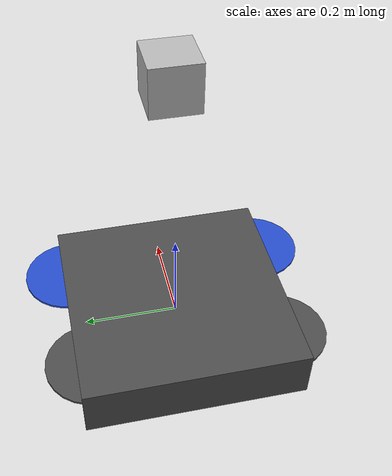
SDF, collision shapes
<sdf version='1.5'>
  <model name='iris'>
    <link name='base_link'>
      <pose>0 0 0 0 -0 0</pose>
      <inertial>
        <pose>0 0 0 0 -0 0</pose>
        <mass>1.5</mass>
        <inertia>
          <ixx>0.0347563</ixx>
          <ixy>0</ixy>
          <ixz>0</ixz>
          <iyy>0.0458929</iyy>
          <iyz>0</iyz>
          <izz>0.0977</izz>
        </inertia>
      </inertial>
      <collision name='base_link_collision'>
        <pose>0 0 0 0 -0 0</pose>
        <geometry>
          <box>
            <size>0.47 0.47 0.11</size>
          </box>
        </geometry>
        <surface>
          <contact>
            <ode/>
          </contact>
          <friction>
            <ode/>
          </friction>
        </surface>
      </collision>
      <visual name='base_link_visual'>
        <pose>0 0 0 0 -0 0</pose>
        <geometry>
          <mesh>
            <scale>1 1 1</scale>
            <uri>model://rotors_description/meshes/iris.dae</uri>
          </mesh>
        </geometry>
        <material>
          <script>
            <name>Gazebo/DarkGrey</name>
            <uri>__default__</uri>
          </script>
        </material>
      </visual>
      <gravity>1</gravity>
      <velocity_decay/>
      <self_collide>0</self_collide>
    </link>
    <link name='iris/imu_link'>
      <pose>0 0 0 0 -0 0</pose>
      <inertial>
        <pose>0 0 0 0 -0 0</pose>
        <mass>0.015</mass>
        <inertia>
          <ixx>1e-05</ixx>
          <ixy>0</ixy>
          <ixz>0</ixz>
          <iyy>1e-05</iyy>
          <iyz>0</iyz>
          <izz>1e-05</izz>
        </inertia>
      </inertial>
    </link>
    <joint name='iris/imu_joint' type='revolute'>
      <child>iris/imu_link</child>
      <parent>base_link</parent>
      <axis>
        <xyz>1 0 0</xyz>
        <limit>
          <lower>0</lower>
          <upper>0</upper>
          <effort>0</effort>
          <velocity>0</velocity>
        </limit>
        <dynamics>
          <spring_reference>0</spring_reference>
          <spring_stiffness>0</spring_stiffness>
        </dynamics>
        <use_parent_model_frame>1</use_parent_model_frame>
      </axis>
    </joint>
    <link name='rotor_0'>
      <pose>0.13 -0.22 0.023 0 -0 0</pose>
      <inertial>
        <pose>0 0 0 0 -0 0</pose>
        <mass>0.005</mass>
        <inertia>
          <ixx>9.75e-07</ixx>
          <ixy>0</ixy>
          <ixz>0</ixz>
          <iyy>0.000166704</iyy>
          <iyz>0</iyz>
          <izz>0.000167604</izz>
        </inertia>
      </inertial>
      <collision name='rotor_0_collision'>
        <pose>0 0 0 0 -0 0</pose>
        <geometry>
          <cylinder>
            <length>0.005</length>
            <radius>0.1</radius>
          </cylinder>
        </geometry>
        <surface>
          <contact>
            <ode/>
          </contact>
          <friction>
            <ode/>
          </friction>
        </surface>
      </collision>
      <visual name='rotor_0_visual'>
        <pose>0 0 0 0 -0 0</pose>
        <geometry>
          <mesh>
            <scale>1 1 1</scale>
            <uri>model://rotors_description/meshes/iris_prop_ccw.dae</uri>
          </mesh>
        </geometry>
        <material>
          <script>
            <name>Gazebo/Blue</name>
            <uri>__default__</uri>
          </script>
        </material>
      </visual>
      <gravity>1</gravity>
      <velocity_decay/>
      <self_collide>0</self_collide>
    </link>
    <joint name='rotor_0_joint' type='revolute'>
      <child>rotor_0</child>
      <parent>base_link</parent>
      <axis>
        <xyz>0 0 1</xyz>
        <limit>
          <lower>-1e+16</lower>
          <upper>1e+16</upper>
        </limit>
        <dynamics>
          <spring_reference>0</spring_reference>
          <spring_stiffness>0</spring_stiffness>
        </dynamics>
        <use_parent_model_frame>1</use_parent_model_frame>
      </axis>
    </joint>
    <link name='rotor_1'>
      <pose>-0.13 0.2 0.023 0 -0 0</pose>
      <inertial>
        <pose>0 0 0 0 -0 0</pose>
        <mass>0.005</mass>
        <inertia>
          <ixx>9.75e-07</ixx>
          <ixy>0</ixy>
          <ixz>0</ixz>
          <iyy>0.000166704</iyy>
          <iyz>0</iyz>
          <izz>0.000167604</izz>
        </inertia>
      </inertial>
      <collision name='rotor_1_collision'>
        <pose>0 0 0 0 -0 0</pose>
        <geometry>
          <cylinder>
            <length>0.005</length>
            <radius>0.1</radius>
          </cylinder>
        </geometry>
        <surface>
          <contact>
            <ode/>
          </contact>
          <friction>
            <ode/>
          </friction>
        </surface>
      </collision>
      <visual name='rotor_1_visual'>
        <pose>0 0 0 0 -0 0</pose>
        <geometry>
          <mesh>
            <scale>1 1 1</scale>
            <uri>model://rotors_description/meshes/iris_prop_ccw.dae</uri>
          </mesh>
        </geometry>
        <material>
          <script>
            <name>Gazebo/DarkGrey</name>
            <uri>__default__</uri>
          </script>
        </material>
      </visual>
      <gravity>1</gravity>
      <velocity_decay/>
      <self_collide>0</self_collide>
    </link>
    <joint name='rotor_1_joint' type='revolute'>
      <child>rotor_1</child>
      <parent>base_link</parent>
      <axis>
        <xyz>0 0 1</xyz>
        <limit>
          <lower>-1e+16</lower>
          <upper>1e+16</upper>
        </limit>
        <dynamics>
          <spring_reference>0</spring_reference>
          <spring_stiffness>0</spring_stiffness>
        </dynamics>
        <use_parent_model_frame>1</use_parent_model_frame>
      </axis>
    </joint>
    <link name='rotor_2'>
      <pose>0.13 0.22 0.023 0 -0 0</pose>
      <inertial>
        <pose>0 0 0 0 -0 0</pose>
        <mass>0.005</mass>
        <inertia>
          <ixx>9.75e-07</ixx>
          <ixy>0</ixy>
          <ixz>0</ixz>
          <iyy>0.000166704</iyy>
          <iyz>0</iyz>
          <izz>0.000167604</izz>
        </inertia>
      </inertial>
      <collision name='rotor_2_collision'>
        <pose>0 0 0 0 -0 0</pose>
        <geometry>
          <cylinder>
            <length>0.005</length>
            <radius>0.1</radius>
          </cylinder>
        </geometry>
        <surface>
          <contact>
            <ode/>
          </contact>
          <friction>
            <ode/>
          </friction>
        </surface>
      </collision>
      <visual name='rotor_2_visual'>
        <pose>0 0 0 0 -0 0</pose>
        <geometry>
          <mesh>
            <scale>1 1 1</scale>
            <uri>model://rotors_description/meshes/iris_prop_cw.dae</uri>
          </mesh>
        </geometry>
        <material>
          <script>
            <name>Gazebo/Blue</name>
            <uri>__default__</uri>
          </script>
        </material>
      </visual>
      <gravity>1</gravity>
      <velocity_decay/>
      <self_collide>0</self_collide>
    </link>
    <joint name='rotor_2_joint' type='revolute'>
      <child>rotor_2</child>
      <parent>base_link</parent>
      <axis>
        <xyz>0 0 1</xyz>
        <limit>
          <lower>-1e+16</lower>
          <upper>1e+16</upper>
        </limit>
        <dynamics>
          <spring_reference>0</spring_reference>
          <spring_stiffness>0</spring_stiffness>
        </dynamics>
        <use_parent_model_frame>1</use_parent_model_frame>
      </axis>
    </joint>
    <link name='rotor_3'>
      <pose>-0.13 -0.2 0.023 0 -0 0</pose>
      <inertial>
        <pose>0 0 0 0 -0 0</pose>
        <mass>0.005</mass>
        <inertia>
          <ixx>9.75e-07</ixx>
          <ixy>0</ixy>
          <ixz>0</ixz>
          <iyy>0.000166704</iyy>
          <iyz>0</iyz>
          <izz>0.000167604</izz>
        </inertia>
      </inertial>
      <collision name='rotor_3_collision'>
        <pose>0 0 0 0 -0 0</pose>
        <geometry>
          <cylinder>
            <length>0.005</length>
            <radius>0.1</radius>
          </cylinder>
        </geometry>
        <surface>
          <contact>
            <ode/>
          </contact>
          <friction>
            <ode/>
          </friction>
        </surface>
      </collision>
      <visual name='rotor_3_visual'>
        <pose>0 0 0 0 -0 0</pose>
        <geometry>
          <mesh>
            <scale>1 1 1</scale>
            <uri>model://rotors_description/meshes/iris_prop_cw.dae</uri>
          </mesh>
        </geometry>
        <material>
          <script>
            <name>Gazebo/DarkGrey</name>
            <uri>__default__</uri>
          </script>
        </material>
      </visual>
      <gravity>1</gravity>
      <velocity_decay/>
      <self_collide>0</self_collide>
    </link>
    <joint name='rotor_3_joint' type='revolute'>
      <child>rotor_3</child>
      <parent>base_link</parent>
      <axis>
        <xyz>0 0 1</xyz>
        <limit>
          <lower>-1e+16</lower>
          <upper>1e+16</upper>
        </limit>
        <dynamics>
          <spring_reference>0</spring_reference>
          <spring_stiffness>0</spring_stiffness>
        </dynamics>
        <use_parent_model_frame>1</use_parent_model_frame>
      </axis>
    </joint>
    <!-- Hokuyo Laser -->
    <link name="hokuyo_link">
     <pose>0.05 0 0.06 0 0 0</pose>
     <inertial>
       <inertia>
         <ixx>1e-6</ixx>
         <ixy>0</ixy>
         <ixz>0</ixz>
         <iyy>1e-6</iyy>
         <iyz>0</iyz>
         <izz>1e-6</izz>
       </inertia>
       <mass>1e-5</mass>
     </inertial>
     <collision name="collision">
       <pose>0 0 0.5 0 0 0</pose>
       <geometry>
         <box>
           <size>0.1 0.1 0.1</size>
         </box>
       </geometry>
     </collision>
     <visual name="visual">
       <geometry>
         <mesh>
           <uri>model://hokuyo/meshes/hokuyo.dae</uri>
         </mesh>
       </geometry>
     </visual>
     <sensor name="laser" type="ray">
       <visualize>false</visualize>
       <pose>0.01 0 0.0175 0 -0 0</pose>
       <ray>
         <scan>
           <horizontal>
             <samples>666</samples>
             <resolution>1</resolution>
             <min_angle>-2.0944</min_angle>
             <max_angle>2.0944</max_angle>
           </horizontal>
         </scan>
         <range>
           <min>0.06</min>
           <max>4.095</max>
           <resolution>0.001</resolution>
         </range>
       </ray>
       <plugin name="gazebo_ros_laser_controller" filename="libgazebo_ros_laser.so">
<gaussianNoise>0.005</gaussianNoise>
<alwaysOn>true</alwaysOn>
<updateRate>20</updateRate>
<topicName>scan</topicName>
<frameName>laser</frameName>
<interface:laser name="gazebo_ros_laser_iface" />
</plugin>
       <always_on>1</always_on>
       <update_rate>30</update_rate>
       <visualize>false</visualize>
     </sensor>
    </link>
    <joint name="hokuyo_joint" type="revolute">
     <parent>base_link</parent>
     <child>hokuyo_link</child>
     <axis>
       <xyz>0 1 0</xyz>
       <limit>
         <upper>0</upper>
         <lower>0</lower>
       </limit>
     </axis>
   </joint>
    <plugin name='rosbag' filename='librotors_gazebo_multirotor_base_plugin.so'>
      <robotNamespace>iris</robotNamespace>
      <linkName>base_link</linkName>
      <rotorVelocitySlowdownSim>10</rotorVelocitySlowdownSim>
    </plugin>
    <plugin name='front_right_motor_model' filename='librotors_gazebo_motor_model.so'>
      <robotNamespace>iris</robotNamespace>
      <jointName>rotor_0_joint</jointName>
      <linkName>rotor_0</linkName>
      <turningDirection>ccw</turningDirection>
      <timeConstantUp>0.0125</timeConstantUp>
      <timeConstantDown>0.025</timeConstantDown>
      <maxRotVelocity>838</maxRotVelocity>
      <motorConstant>8.54858e-06</motorConstant>
      <momentConstant>0.16</momentConstant>
      <commandSubTopic>gazebo/command/motor_speed</commandSubTopic>
      <motorNumber>0</motorNumber>
      <rotorDragCoefficient>8.06428e-05</rotorDragCoefficient>
      <rollingMomentCoefficient>1e-06</rollingMomentCoefficient>
      <motorSpeedPubTopic>motor_speed/0</motorSpeedPubTopic>
      <rotorVelocitySlowdownSim>10</rotorVelocitySlowdownSim>
    </plugin>
    <plugin name='back_left_motor_model' filename='librotors_gazebo_motor_model.so'>
      <robotNamespace>iris</robotNamespace>
      <jointName>rotor_1_joint</jointName>
      <linkName>rotor_1</linkName>
      <turningDirection>ccw</turningDirection>
      <timeConstantUp>0.0125</timeConstantUp>
      <timeConstantDown>0.025</timeConstantDown>
      <maxRotVelocity>838</maxRotVelocity>
      <motorConstant>8.54858e-06</motorConstant>
      <momentConstant>0.16</momentConstant>
      <commandSubTopic>gazebo/command/motor_speed</commandSubTopic>
      <motorNumber>1</motorNumber>
      <rotorDragCoefficient>8.06428e-05</rotorDragCoefficient>
      <rollingMomentCoefficient>1e-06</rollingMomentCoefficient>
      <motorSpeedPubTopic>motor_speed/1</motorSpeedPubTopic>
      <rotorVelocitySlowdownSim>10</rotorVelocitySlowdownSim>
    </plugin>
    <plugin name='front_left_motor_model' filename='librotors_gazebo_motor_model.so'>
      <robotNamespace>iris</robotNamespace>
      <jointName>rotor_2_joint</jointName>
      <linkName>rotor_2</linkName>
      <turningDirection>cw</turningDirection>
      <timeConstantUp>0.0125</timeConstantUp>
      <timeConstantDown>0.025</timeConstantDown>
      <maxRotVelocity>838</maxRotVelocity>
      <motorConstant>8.54858e-06</motorConstant>
      <momentConstant>0.16</momentConstant>
      <commandSubTopic>gazebo/command/motor_speed</commandSubTopic>
      <motorNumber>2</motorNumber>
      <rotorDragCoefficient>8.06428e-05</rotorDragCoefficient>
      <rollingMomentCoefficient>1e-06</rollingMomentCoefficient>
      <motorSpeedPubTopic>motor_speed/2</motorSpeedPubTopic>
      <rotorVelocitySlowdownSim>10</rotorVelocitySlowdownSim>
    </plugin>
    <plugin name='back_right_motor_model' filename='librotors_gazebo_motor_model.so'>
      <robotNamespace>iris</robotNamespace>
      <jointName>rotor_3_joint</jointName>
      <linkName>rotor_3</linkName>
      <turningDirection>cw</turningDirection>
      <timeConstantUp>0.0125</timeConstantUp>
      <timeConstantDown>0.025</timeConstantDown>
      <maxRotVelocity>838</maxRotVelocity>
      <motorConstant>8.54858e-06</motorConstant>
      <momentConstant>0.16</momentConstant>
      <commandSubTopic>gazebo/command/motor_speed</commandSubTopic>
      <motorNumber>3</motorNumber>
      <rotorDragCoefficient>8.06428e-05</rotorDragCoefficient>
      <rollingMomentCoefficient>1e-06</rollingMomentCoefficient>
      <motorSpeedPubTopic>motor_speed/3</motorSpeedPubTopic>
      <rotorVelocitySlowdownSim>10</rotorVelocitySlowdownSim>
    </plugin>
    <plugin name='mavlink_interface' filename='librotors_gazebo_mavlink_interface.so'>
      <robotNamespace>iris</robotNamespace>
      <imuSubTopic>imu</imuSubTopic>
      <motorSpeedCommandPubTopic>gazebo/command/motor_speed</motorSpeedCommandPubTopic>
    </plugin>
    <static>0</static>
    <plugin name='rotors_gazebo_imu_plugin' filename='librotors_gazebo_imu_plugin.so'>
      <robotNamespace>iris</robotNamespace>
      <linkName>iris/imu_link</linkName>
      <imuTopic>imu</imuTopic>
      <gyroscopeNoiseDensity>0.0003394</gyroscopeNoiseDensity>
      <gyroscopeRandomWalk>3.8785e-05</gyroscopeRandomWalk>
      <gyroscopeBiasCorrelationTime>1000.0</gyroscopeBiasCorrelationTime>
      <gyroscopeTurnOnBiasSigma>0.0087</gyroscopeTurnOnBiasSigma>
      <accelerometerNoiseDensity>0.004</accelerometerNoiseDensity>
      <accelerometerRandomWalk>0.006</accelerometerRandomWalk>
      <accelerometerBiasCorrelationTime>300.0</accelerometerBiasCorrelationTime>
      <accelerometerTurnOnBiasSigma>0.196</accelerometerTurnOnBiasSigma>
    </plugin>
  </model>
</sdf>
